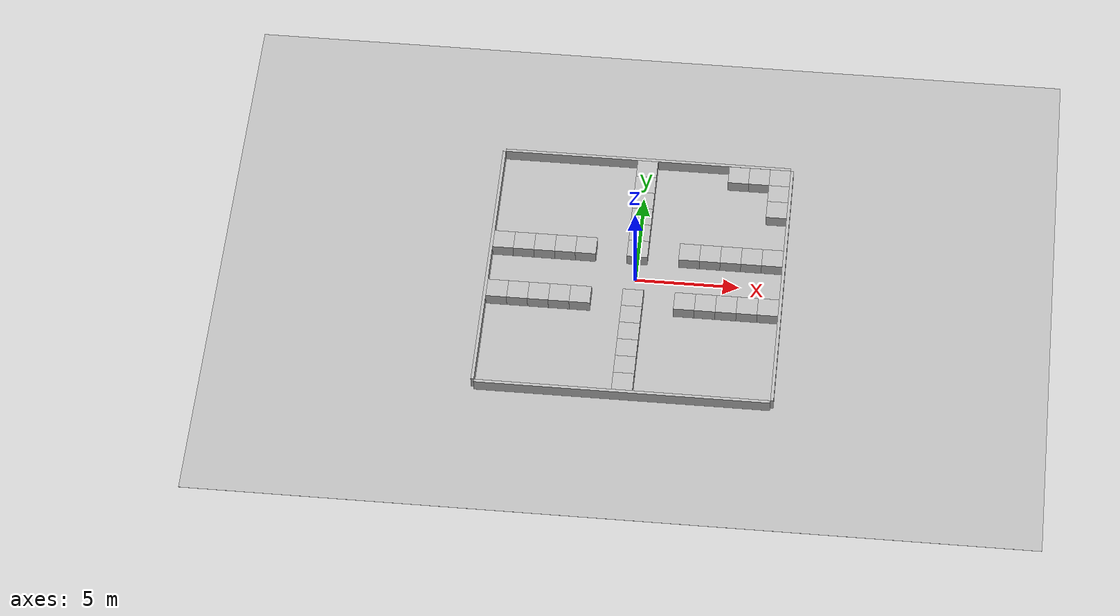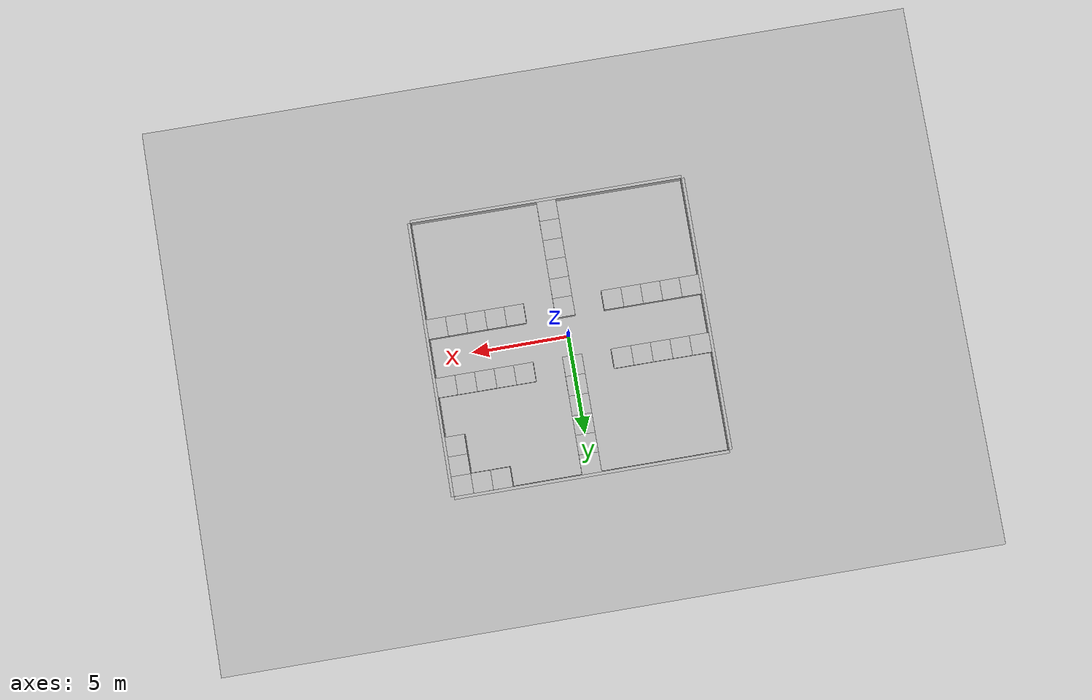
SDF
<sdf version="1.7">
 <world name="default">
  <scene>
   <shadows>0</shadows>
   <ambient>0.8 0.8 0.8 1</ambient>
   <background>1 1 1 1</background>
   <grid>1</grid>
   <origin_visual>1</origin_visual>
  </scene>
  <physics name="default_physics" default="0" type="ode">
   <max_step_size>0.001</max_step_size>
   <real_time_factor>1</real_time_factor>
   <real_time_update_rate>500</real_time_update_rate>
  </physics>
  <model name="ground_plane">
   <static>1</static>
   <link name="link">
    <collision name="collision">
     <geometry><plane><normal>0 0 1</normal><size>50 50</size></plane></geometry>
     <surface><friction><ode><mu>100</mu><mu2>50</mu2></ode></friction></surface>
    </collision>
    <visual name="visual">
     <cast_shadows>0</cast_shadows>
     <geometry><plane><normal>0 0 1</normal><size>100 100</size></plane></geometry>
     <material>
      <script><name>Gazebo/Grey</name><uri>model://media/materials/scripts/gazebo.material</uri></script>
     </material>
    </visual>
    <velocity_decay><linear>0</linear><angular>0</angular></velocity_decay>
   </link>
  </model>
  <gravity>0 0 -9.8</gravity>
  <magnetic_field>6e-06 2.3e-05 -4.2e-05</magnetic_field>
  <atmosphere type="adiabatic"/>
  <audio><device>default</device></audio>
  <spherical_coordinates>
   <surface_model>EARTH_WGS84</surface_model>
   <latitude_deg>0</latitude_deg>
   <longitude_deg>0</longitude_deg>
   <elevation>0</elevation>
   <heading_deg>0</heading_deg>
  </spherical_coordinates>
  <model name="unit_box">
   <pose>6.5 6.5 0.5 0 -0 0</pose>
   <static>1</static>
   <link name="link">
    <inertial>
     <mass>1</mass>
     <inertia>
      <ixx>0.166667</ixx>
      <ixy>0</ixy>
      <ixz>0</ixz>
      <iyy>0.166667</iyy>
      <iyz>0</iyz>
      <izz>0.166667</izz>
     </inertia>
    </inertial>
    <collision name="collision"><geometry><box><size>0.999998 1 1</size></box></geometry></collision>
    <visual name="visual">
     <geometry><mesh><uri>model://concrete_cube_1m/meshes/concrete_cube_1m.dae</uri></mesh></geometry>
    </visual>
   </link>
  </model>
  <model name="outer_barrier_1">
   <pose>-7.075 0 0.5 0 -0 0</pose>
   <static>1</static>
   <link name="link">
    <inertial>
     <mass>1</mass>
     <inertia>
      <ixx>0.166667</ixx>
      <ixy>0</ixy>
      <ixz>0</ixz>
      <iyy>0.166667</iyy>
      <iyz>0</iyz>
      <izz>0.166667</izz>
     </inertia>
    </inertial>
    <collision name="collision"><geometry><box><size>0.2 14 1</size></box></geometry></collision>
    <visual name="visual">
     <geometry><mesh><uri>model://concrete_barrier_14m/meshes/concrete_barrier_14m.dae</uri></mesh></geometry>
    </visual>
   </link>
  </model>
  <model name="outer_barrier_2">
   <pose>7.075 0 0.5 0 -0 0</pose>
   <static>1</static>
   <link name="link">
    <inertial>
     <mass>1</mass>
     <inertia>
      <ixx>0.166667</ixx>
      <ixy>0</ixy>
      <ixz>0</ixz>
      <iyy>0.166667</iyy>
      <iyz>0</iyz>
      <izz>0.166667</izz>
     </inertia>
    </inertial>
    <collision name="collision"><geometry><box><size>0.2 14 1</size></box></geometry></collision>
    <visual name="visual">
     <geometry><mesh><uri>model://concrete_barrier_14m/meshes/concrete_barrier_14m.dae</uri></mesh></geometry>
    </visual>
   </link>
  </model>
  <model name="outer_barrier_3">
   <pose>0 7.075 0.5 0 -0 1.5708</pose>
   <static>1</static>
   <link name="link">
    <inertial>
     <mass>1</mass>
     <inertia>
      <ixx>0.166667</ixx>
      <ixy>0</ixy>
      <ixz>0</ixz>
      <iyy>0.166667</iyy>
      <iyz>0</iyz>
      <izz>0.166667</izz>
     </inertia>
    </inertial>
    <collision name="collision"><geometry><box><size>0.2 14 1</size></box></geometry></collision>
    <visual name="visual">
     <geometry><mesh><uri>model://concrete_barrier_14m/meshes/concrete_barrier_14m.dae</uri></mesh></geometry>
    </visual>
   </link>
  </model>
  <model name="outer_barrier_4">
   <pose>0 -7.075 0.5 0 -0 1.5708</pose>
   <static>1</static>
   <link name="link">
    <inertial>
     <mass>1</mass>
     <inertia>
      <ixx>0.166667</ixx>
      <ixy>0</ixy>
      <ixz>0</ixz>
      <iyy>0.166667</iyy>
      <iyz>0</iyz>
      <izz>0.166667</izz>
     </inertia>
    </inertial>
    <collision name="collision"><geometry><box><size>0.2 14 1</size></box></geometry></collision>
    <visual name="visual">
     <geometry><mesh><uri>model://concrete_barrier_14m/meshes/concrete_barrier_14m.dae</uri></mesh></geometry>
    </visual>
   </link>
  </model>
  <model name="box_01">
   <pose>6.5 5.5 0.5 0 -0 0</pose>
   <static>1</static>
   <link name="link">
    <inertial>
     <mass>1</mass>
     <inertia>
      <ixx>0.166667</ixx>
      <ixy>0</ixy>
      <ixz>0</ixz>
      <iyy>0.166667</iyy>
      <iyz>0</iyz>
      <izz>0.166667</izz>
     </inertia>
    </inertial>
    <collision name="collision"><geometry><box><size>0.999998 1 1</size></box></geometry></collision>
    <visual name="visual">
     <geometry><mesh><uri>model://concrete_cube_1m/meshes/concrete_cube_1m.dae</uri></mesh></geometry>
    </visual>
   </link>
  </model>
  <model name="box_02">
   <pose>4.5 1.5 0.5 0 -0 0</pose>
   <static>1</static>
   <link name="link">
    <inertial>
     <mass>1</mass>
     <inertia>
      <ixx>0.166667</ixx>
      <ixy>0</ixy>
      <ixz>0</ixz>
      <iyy>0.166667</iyy>
      <iyz>0</iyz>
      <izz>0.166667</izz>
     </inertia>
    </inertial>
    <collision name="collision"><geometry><box><size>0.999998 1 1</size></box></geometry></collision>
    <visual name="visual">
     <geometry><mesh><uri>model://concrete_cube_1m/meshes/concrete_cube_1m.dae</uri></mesh></geometry>
    </visual>
   </link>
  </model>
  <model name="box_04">
   <pose>0 -1.5 0.5 0 -0 0</pose>
   <static>1</static>
   <link name="link">
    <inertial>
     <mass>1</mass>
     <inertia>
      <ixx>0.166667</ixx>
      <ixy>0</ixy>
      <ixz>0</ixz>
      <iyy>0.166667</iyy>
      <iyz>0</iyz>
      <izz>0.166667</izz>
     </inertia>
    </inertial>
    <collision name="collision"><geometry><box><size>0.999998 1 1</size></box></geometry></collision>
    <visual name="visual">
     <geometry><mesh><uri>model://concrete_cube_1m/meshes/concrete_cube_1m.dae</uri></mesh></geometry>
    </visual>
   </link>
  </model>
  <model name="box_05">
   <pose>0 -2.5 0.5 0 -0 0</pose>
   <static>1</static>
   <link name="link">
    <inertial>
     <mass>1</mass>
     <inertia>
      <ixx>0.166667</ixx>
      <ixy>0</ixy>
      <ixz>0</ixz>
      <iyy>0.166667</iyy>
      <iyz>0</iyz>
      <izz>0.166667</izz>
     </inertia>
    </inertial>
    <collision name="collision"><geometry><box><size>0.999998 1 1</size></box></geometry></collision>
    <visual name="visual">
     <geometry><mesh><uri>model://concrete_cube_1m/meshes/concrete_cube_1m.dae</uri></mesh></geometry>
    </visual>
   </link>
  </model>
  <model name="box_06">
   <pose>0 -5.5 0.5 0 -0 0</pose>
   <static>1</static>
   <link name="link">
    <inertial>
     <mass>1</mass>
     <inertia>
      <ixx>0.166667</ixx>
      <ixy>0</ixy>
      <ixz>0</ixz>
      <iyy>0.166667</iyy>
      <iyz>0</iyz>
      <izz>0.166667</izz>
     </inertia>
    </inertial>
    <collision name="collision"><geometry><box><size>0.999998 1 1</size></box></geometry></collision>
    <visual name="visual">
     <geometry><mesh><uri>model://concrete_cube_1m/meshes/concrete_cube_1m.dae</uri></mesh></geometry>
    </visual>
   </link>
  </model>
  <model name="box_07">
   <pose>0 -3.5 0.5 0 -0 0</pose>
   <static>1</static>
   <link name="link">
    <inertial>
     <mass>1</mass>
     <inertia>
      <ixx>0.166667</ixx>
      <ixy>0</ixy>
      <ixz>0</ixz>
      <iyy>0.166667</iyy>
      <iyz>0</iyz>
      <izz>0.166667</izz>
     </inertia>
    </inertial>
    <collision name="collision"><geometry><box><size>0.999998 1 1</size></box></geometry></collision>
    <visual name="visual">
     <geometry><mesh><uri>model://concrete_cube_1m/meshes/concrete_cube_1m.dae</uri></mesh></geometry>
    </visual>
   </link>
  </model>
  <model name="box_09">
   <pose>0 -6.5 0.5 0 -0 0</pose>
   <static>1</static>
   <link name="link">
    <inertial>
     <mass>1</mass>
     <inertia>
      <ixx>0.166667</ixx>
      <ixy>0</ixy>
      <ixz>0</ixz>
      <iyy>0.166667</iyy>
      <iyz>0</iyz>
      <izz>0.166667</izz>
     </inertia>
    </inertial>
    <collision name="collision"><geometry><box><size>0.999998 1 1</size></box></geometry></collision>
    <visual name="visual">
     <geometry><mesh><uri>model://concrete_cube_1m/meshes/concrete_cube_1m.dae</uri></mesh></geometry>
    </visual>
   </link>
  </model>
  <model name="box_10">
   <pose>6.5 1.5 0.5 0 -0 0</pose>
   <static>1</static>
   <link name="link">
    <inertial>
     <mass>1</mass>
     <inertia>
      <ixx>0.166667</ixx>
      <ixy>0</ixy>
      <ixz>0</ixz>
      <iyy>0.166667</iyy>
      <iyz>0</iyz>
      <izz>0.166667</izz>
     </inertia>
    </inertial>
    <collision name="collision"><geometry><box><size>0.999998 1 1</size></box></geometry></collision>
    <visual name="visual">
     <geometry><mesh><uri>model://concrete_cube_1m/meshes/concrete_cube_1m.dae</uri></mesh></geometry>
    </visual>
   </link>
  </model>
  <model name="box_11">
   <pose>0 2.5 0.5 0 -0 0</pose>
   <static>1</static>
   <link name="link">
    <inertial>
     <mass>1</mass>
     <inertia>
      <ixx>0.166667</ixx>
      <ixy>0</ixy>
      <ixz>0</ixz>
      <iyy>0.166667</iyy>
      <iyz>0</iyz>
      <izz>0.166667</izz>
     </inertia>
    </inertial>
    <collision name="collision"><geometry><box><size>0.999998 1 1</size></box></geometry></collision>
    <visual name="visual">
     <geometry><mesh><uri>model://concrete_cube_1m/meshes/concrete_cube_1m.dae</uri></mesh></geometry>
    </visual>
   </link>
  </model>
  <model name="box_12">
   <pose>0 1.5 0.5 0 -0 0</pose>
   <static>1</static>
   <link name="link">
    <inertial>
     <mass>1</mass>
     <inertia>
      <ixx>0.166667</ixx>
      <ixy>0</ixy>
      <ixz>0</ixz>
      <iyy>0.166667</iyy>
      <iyz>0</iyz>
      <izz>0.166667</izz>
     </inertia>
    </inertial>
    <collision name="collision"><geometry><box><size>0.999998 1 1</size></box></geometry></collision>
    <visual name="visual">
     <geometry><mesh><uri>model://concrete_cube_1m/meshes/concrete_cube_1m.dae</uri></mesh></geometry>
    </visual>
   </link>
  </model>
  <model name="box_13">
   <pose>3.5 1.5 0.5 0 -0 0</pose>
   <static>1</static>
   <link name="link">
    <inertial>
     <mass>1</mass>
     <inertia>
      <ixx>0.166667</ixx>
      <ixy>0</ixy>
      <ixz>0</ixz>
      <iyy>0.166667</iyy>
      <iyz>0</iyz>
      <izz>0.166667</izz>
     </inertia>
    </inertial>
    <collision name="collision"><geometry><box><size>0.999998 1 1</size></box></geometry></collision>
    <visual name="visual">
     <geometry><mesh><uri>model://concrete_cube_1m/meshes/concrete_cube_1m.dae</uri></mesh></geometry>
    </visual>
   </link>
  </model>
  <model name="box_15">
   <pose>4.5 -1.5 0.5 0 -0 0</pose>
   <static>1</static>
   <link name="link">
    <inertial>
     <mass>1</mass>
     <inertia>
      <ixx>0.166667</ixx>
      <ixy>0</ixy>
      <ixz>0</ixz>
      <iyy>0.166667</iyy>
      <iyz>0</iyz>
      <izz>0.166667</izz>
     </inertia>
    </inertial>
    <collision name="collision"><geometry><box><size>0.999998 1 1</size></box></geometry></collision>
    <visual name="visual">
     <geometry><mesh><uri>model://concrete_cube_1m/meshes/concrete_cube_1m.dae</uri></mesh></geometry>
    </visual>
   </link>
  </model>
  <model name="box_17">
   <pose>2.5 1.5 0.5 0 -0 0</pose>
   <static>1</static>
   <link name="link">
    <inertial>
     <mass>1</mass>
     <inertia>
      <ixx>0.166667</ixx>
      <ixy>0</ixy>
      <ixz>0</ixz>
      <iyy>0.166667</iyy>
      <iyz>0</iyz>
      <izz>0.166667</izz>
     </inertia>
    </inertial>
    <collision name="collision"><geometry><box><size>0.999998 1 1</size></box></geometry></collision>
    <visual name="visual">
     <geometry><mesh><uri>model://concrete_cube_1m/meshes/concrete_cube_1m.dae</uri></mesh></geometry>
    </visual>
   </link>
  </model>
  <model name="box_18">
   <pose>-4.5 1.5 0.5 0 -0 0</pose>
   <static>1</static>
   <link name="link">
    <inertial>
     <mass>1</mass>
     <inertia>
      <ixx>0.166667</ixx>
      <ixy>0</ixy>
      <ixz>0</ixz>
      <iyy>0.166667</iyy>
      <iyz>0</iyz>
      <izz>0.166667</izz>
     </inertia>
    </inertial>
    <collision name="collision"><geometry><box><size>0.999998 1 1</size></box></geometry></collision>
    <visual name="visual">
     <geometry><mesh><uri>model://concrete_cube_1m/meshes/concrete_cube_1m.dae</uri></mesh></geometry>
    </visual>
   </link>
  </model>
  <model name="box_20">
   <pose>5.5 -1.5 0.5 0 -0 0</pose>
   <static>1</static>
   <link name="link">
    <inertial>
     <mass>1</mass>
     <inertia>
      <ixx>0.166667</ixx>
      <ixy>0</ixy>
      <ixz>0</ixz>
      <iyy>0.166667</iyy>
      <iyz>0</iyz>
      <izz>0.166667</izz>
     </inertia>
    </inertial>
    <collision name="collision"><geometry><box><size>0.999998 1 1</size></box></geometry></collision>
    <visual name="visual">
     <geometry><mesh><uri>model://concrete_cube_1m/meshes/concrete_cube_1m.dae</uri></mesh></geometry>
    </visual>
   </link>
  </model>
  <model name="box_23">
   <pose>0 5.5 0.5 0 -0 0</pose>
   <static>1</static>
   <link name="link">
    <inertial>
     <mass>1</mass>
     <inertia>
      <ixx>0.166667</ixx>
      <ixy>0</ixy>
      <ixz>0</ixz>
      <iyy>0.166667</iyy>
      <iyz>0</iyz>
      <izz>0.166667</izz>
     </inertia>
    </inertial>
    <collision name="collision"><geometry><box><size>0.999998 1 1</size></box></geometry></collision>
    <visual name="visual">
     <geometry><mesh><uri>model://concrete_cube_1m/meshes/concrete_cube_1m.dae</uri></mesh></geometry>
    </visual>
   </link>
  </model>
  <model name="box_24">
   <pose>0 6.5 0.5 0 -0 0</pose>
   <static>1</static>
   <link name="link">
    <inertial>
     <mass>1</mass>
     <inertia>
      <ixx>0.166667</ixx>
      <ixy>0</ixy>
      <ixz>0</ixz>
      <iyy>0.166667</iyy>
      <iyz>0</iyz>
      <izz>0.166667</izz>
     </inertia>
    </inertial>
    <collision name="collision"><geometry><box><size>0.999998 1 1</size></box></geometry></collision>
    <visual name="visual">
     <geometry><mesh><uri>model://concrete_cube_1m/meshes/concrete_cube_1m.dae</uri></mesh></geometry>
    </visual>
   </link>
  </model>
  <model name="box_25">
   <pose>0 4.5 0.5 0 -0 0</pose>
   <static>1</static>
   <link name="link">
    <inertial>
     <mass>1</mass>
     <inertia>
      <ixx>0.166667</ixx>
      <ixy>0</ixy>
      <ixz>0</ixz>
      <iyy>0.166667</iyy>
      <iyz>0</iyz>
      <izz>0.166667</izz>
     </inertia>
    </inertial>
    <collision name="collision"><geometry><box><size>0.999998 1 1</size></box></geometry></collision>
    <visual name="visual">
     <geometry><mesh><uri>model://concrete_cube_1m/meshes/concrete_cube_1m.dae</uri></mesh></geometry>
    </visual>
   </link>
  </model>
  <model name="box_26">
   <pose>0 3.5 0.5 0 -0 0</pose>
   <static>1</static>
   <link name="link">
    <inertial>
     <mass>1</mass>
     <inertia>
      <ixx>0.166667</ixx>
      <ixy>0</ixy>
      <ixz>0</ixz>
      <iyy>0.166667</iyy>
      <iyz>0</iyz>
      <izz>0.166667</izz>
     </inertia>
    </inertial>
    <collision name="collision"><geometry><box><size>0.999998 1 1</size></box></geometry></collision>
    <visual name="visual">
     <geometry><mesh><uri>model://concrete_cube_1m/meshes/concrete_cube_1m.dae</uri></mesh></geometry>
    </visual>
   </link>
  </model>
  <model name="box_27">
   <pose>6.5 4.5 0.5 0 -0 0</pose>
   <static>1</static>
   <link name="link">
    <inertial>
     <mass>1</mass>
     <inertia>
      <ixx>0.166667</ixx>
      <ixy>0</ixy>
      <ixz>0</ixz>
      <iyy>0.166667</iyy>
      <iyz>0</iyz>
      <izz>0.166667</izz>
     </inertia>
    </inertial>
    <collision name="collision"><geometry><box><size>0.999998 1 1</size></box></geometry></collision>
    <visual name="visual">
     <geometry><mesh><uri>model://concrete_cube_1m/meshes/concrete_cube_1m.dae</uri></mesh></geometry>
    </visual>
   </link>
  </model>
  <model name="box_29">
   <pose>0 -4.5 0.5 0 -0 0</pose>
   <static>1</static>
   <link name="link">
    <inertial>
     <mass>1</mass>
     <inertia>
      <ixx>0.166667</ixx>
      <ixy>0</ixy>
      <ixz>0</ixz>
      <iyy>0.166667</iyy>
      <iyz>0</iyz>
      <izz>0.166667</izz>
     </inertia>
    </inertial>
    <collision name="collision"><geometry><box><size>0.999998 1 1</size></box></geometry></collision>
    <visual name="visual">
     <geometry><mesh><uri>model://concrete_cube_1m/meshes/concrete_cube_1m.dae</uri></mesh></geometry>
    </visual>
   </link>
  </model>
  <model name="box_30">
   <pose>-2.5 -1.5 0.5 0 -0 0</pose>
   <static>1</static>
   <link name="link">
    <inertial>
     <mass>1</mass>
     <inertia>
      <ixx>0.166667</ixx>
      <ixy>0</ixy>
      <ixz>0</ixz>
      <iyy>0.166667</iyy>
      <iyz>0</iyz>
      <izz>0.166667</izz>
     </inertia>
    </inertial>
    <collision name="collision"><geometry><box><size>0.999998 1 1</size></box></geometry></collision>
    <visual name="visual">
     <geometry><mesh><uri>model://concrete_cube_1m/meshes/concrete_cube_1m.dae</uri></mesh></geometry>
    </visual>
   </link>
  </model>
  <model name="box_31">
   <pose>-4.5 -1.5 0.5 0 -0 0</pose>
   <static>1</static>
   <link name="link">
    <inertial>
     <mass>1</mass>
     <inertia>
      <ixx>0.166667</ixx>
      <ixy>0</ixy>
      <ixz>0</ixz>
      <iyy>0.166667</iyy>
      <iyz>0</iyz>
      <izz>0.166667</izz>
     </inertia>
    </inertial>
    <collision name="collision"><geometry><box><size>0.999998 1 1</size></box></geometry></collision>
    <visual name="visual">
     <geometry><mesh><uri>model://concrete_cube_1m/meshes/concrete_cube_1m.dae</uri></mesh></geometry>
    </visual>
   </link>
  </model>
  <model name="box_32">
   <pose>-3.5 -1.5 0.5 0 -0 0</pose>
   <static>1</static>
   <link name="link">
    <inertial>
     <mass>1</mass>
     <inertia>
      <ixx>0.166667</ixx>
      <ixy>0</ixy>
      <ixz>0</ixz>
      <iyy>0.166667</iyy>
      <iyz>0</iyz>
      <izz>0.166667</izz>
     </inertia>
    </inertial>
    <collision name="collision"><geometry><box><size>0.999998 1 1</size></box></geometry></collision>
    <visual name="visual">
     <geometry><mesh><uri>model://concrete_cube_1m/meshes/concrete_cube_1m.dae</uri></mesh></geometry>
    </visual>
   </link>
  </model>
  <model name="box_33">
   <pose>-5.5 -1.5 0.5 0 -0 0</pose>
   <static>1</static>
   <link name="link">
    <inertial>
     <mass>1</mass>
     <inertia>
      <ixx>0.166667</ixx>
      <ixy>0</ixy>
      <ixz>0</ixz>
      <iyy>0.166667</iyy>
      <iyz>0</iyz>
      <izz>0.166667</izz>
     </inertia>
    </inertial>
    <collision name="collision"><geometry><box><size>0.999998 1 1</size></box></geometry></collision>
    <visual name="visual">
     <geometry><mesh><uri>model://concrete_cube_1m/meshes/concrete_cube_1m.dae</uri></mesh></geometry>
    </visual>
   </link>
  </model>
  <model name="box_34">
   <pose>-6.5 -1.5 0.5 0 -0 0</pose>
   <static>1</static>
   <link name="link">
    <inertial>
     <mass>1</mass>
     <inertia>
      <ixx>0.166667</ixx>
      <ixy>0</ixy>
      <ixz>0</ixz>
      <iyy>0.166667</iyy>
      <iyz>0</iyz>
      <izz>0.166667</izz>
     </inertia>
    </inertial>
    <collision name="collision"><geometry><box><size>0.999998 1 1</size></box></geometry></collision>
    <visual name="visual">
     <geometry><mesh><uri>model://concrete_cube_1m/meshes/concrete_cube_1m.dae</uri></mesh></geometry>
    </visual>
   </link>
  </model>
  <model name="box_35">
   <pose>-6.5 1.5 0.5 0 -0 0</pose>
   <static>1</static>
   <link name="link">
    <inertial>
     <mass>1</mass>
     <inertia>
      <ixx>0.166667</ixx>
      <ixy>0</ixy>
      <ixz>0</ixz>
      <iyy>0.166667</iyy>
      <iyz>0</iyz>
      <izz>0.166667</izz>
     </inertia>
    </inertial>
    <collision name="collision"><geometry><box><size>0.999998 1 1</size></box></geometry></collision>
    <visual name="visual">
     <geometry><mesh><uri>model://concrete_cube_1m/meshes/concrete_cube_1m.dae</uri></mesh></geometry>
    </visual>
   </link>
  </model>
  <model name="box_36">
   <pose>-3.5 1.5 0.5 0 -0 0</pose>
   <static>1</static>
   <link name="link">
    <inertial>
     <mass>1</mass>
     <inertia>
      <ixx>0.166667</ixx>
      <ixy>0</ixy>
      <ixz>0</ixz>
      <iyy>0.166667</iyy>
      <iyz>0</iyz>
      <izz>0.166667</izz>
     </inertia>
    </inertial>
    <collision name="collision"><geometry><box><size>0.999998 1 1</size></box></geometry></collision>
    <visual name="visual">
     <geometry><mesh><uri>model://concrete_cube_1m/meshes/concrete_cube_1m.dae</uri></mesh></geometry>
    </visual>
   </link>
  </model>
  <model name="box_37">
   <pose>-2.5 1.5 0.5 0 -0 0</pose>
   <static>1</static>
   <link name="link">
    <inertial>
     <mass>1</mass>
     <inertia>
      <ixx>0.166667</ixx>
      <ixy>0</ixy>
      <ixz>0</ixz>
      <iyy>0.166667</iyy>
      <iyz>0</iyz>
      <izz>0.166667</izz>
     </inertia>
    </inertial>
    <collision name="collision"><geometry><box><size>0.999998 1 1</size></box></geometry></collision>
    <visual name="visual">
     <geometry><mesh><uri>model://concrete_cube_1m/meshes/concrete_cube_1m.dae</uri></mesh></geometry>
    </visual>
   </link>
  </model>
  <model name="box_38">
   <pose>-5.5 1.5 0.5 0 -0 0</pose>
   <static>1</static>
   <link name="link">
    <inertial>
     <mass>1</mass>
     <inertia>
      <ixx>0.166667</ixx>
      <ixy>0</ixy>
      <ixz>0</ixz>
      <iyy>0.166667</iyy>
      <iyz>0</iyz>
      <izz>0.166667</izz>
     </inertia>
    </inertial>
    <collision name="collision"><geometry><box><size>0.999998 1 1</size></box></geometry></collision>
    <visual name="visual">
     <geometry><mesh><uri>model://concrete_cube_1m/meshes/concrete_cube_1m.dae</uri></mesh></geometry>
    </visual>
   </link>
  </model>
  <model name="box_39">
   <pose>3.5 -1.5 0.5 0 -0 0</pose>
   <static>1</static>
   <link name="link">
    <inertial>
     <mass>1</mass>
     <inertia>
      <ixx>0.166667</ixx>
      <ixy>0</ixy>
      <ixz>0</ixz>
      <iyy>0.166667</iyy>
      <iyz>0</iyz>
      <izz>0.166667</izz>
     </inertia>
    </inertial>
    <collision name="collision"><geometry><box><size>0.999998 1 1</size></box></geometry></collision>
    <visual name="visual">
     <geometry><mesh><uri>model://concrete_cube_1m/meshes/concrete_cube_1m.dae</uri></mesh></geometry>
    </visual>
   </link>
  </model>
  <model name="box_40">
   <pose>6.5 -1.5 0.5 0 -0 0</pose>
   <static>1</static>
   <link name="link">
    <inertial>
     <mass>1</mass>
     <inertia>
      <ixx>0.166667</ixx>
      <ixy>0</ixy>
      <ixz>0</ixz>
      <iyy>0.166667</iyy>
      <iyz>0</iyz>
      <izz>0.166667</izz>
     </inertia>
    </inertial>
    <collision name="collision"><geometry><box><size>0.999998 1 1</size></box></geometry></collision>
    <visual name="visual">
     <geometry><mesh><uri>model://concrete_cube_1m/meshes/concrete_cube_1m.dae</uri></mesh></geometry>
    </visual>
   </link>
  </model>
  <model name="box_41">
   <pose>2.5 -1.5 0.5 0 -0 0</pose>
   <static>1</static>
   <link name="link">
    <inertial>
     <mass>1</mass>
     <inertia>
      <ixx>0.166667</ixx>
      <ixy>0</ixy>
      <ixz>0</ixz>
      <iyy>0.166667</iyy>
      <iyz>0</iyz>
      <izz>0.166667</izz>
     </inertia>
    </inertial>
    <collision name="collision"><geometry><box><size>0.999998 1 1</size></box></geometry></collision>
    <visual name="visual">
     <geometry><mesh><uri>model://concrete_cube_1m/meshes/concrete_cube_1m.dae</uri></mesh></geometry>
    </visual>
   </link>
  </model>
  <model name="box_42">
   <pose>5.5 1.5 0.5 0 -0 0</pose>
   <static>1</static>
   <link name="link">
    <inertial>
     <mass>1</mass>
     <inertia>
      <ixx>0.166667</ixx>
      <ixy>0</ixy>
      <ixz>0</ixz>
      <iyy>0.166667</iyy>
      <iyz>0</iyz>
      <izz>0.166667</izz>
     </inertia>
    </inertial>
    <collision name="collision"><geometry><box><size>0.999998 1 1</size></box></geometry></collision>
    <visual name="visual">
     <geometry><mesh><uri>model://concrete_cube_1m/meshes/concrete_cube_1m.dae</uri></mesh></geometry>
    </visual>
   </link>
  </model>
  <model name="floor_tiles">
   <static>1</static>
   <link name="link">
    <visual name="visual_floor_tiles_0">
     <geometry><box><size>40 28 0.005</size></box></geometry>
     <material>
      <script>
       <uri>model://floor_tiles/materials/scripts</uri>
       <uri>model://floor_tiles/materials/textures</uri>
       <name>floor_tiles</name>
      </script>
     </material>
    </visual>
   </link>
  </model>
  <model name="box_17_clone">
   <pose>5.5 6.5 0.5 0 -0 0</pose>
   <static>1</static>
   <link name="link">
    <inertial>
     <mass>1</mass>
     <inertia>
      <ixx>0.166667</ixx>
      <ixy>0</ixy>
      <ixz>0</ixz>
      <iyy>0.166667</iyy>
      <iyz>0</iyz>
      <izz>0.166667</izz>
     </inertia>
    </inertial>
    <collision name="collision"><geometry><box><size>0.999998 1 1</size></box></geometry></collision>
    <visual name="visual">
     <geometry><mesh><uri>model://concrete_cube_1m/meshes/concrete_cube_1m.dae</uri></mesh></geometry>
    </visual>
   </link>
  </model>
  <model name="box_17_clone_0">
   <pose>4.5 6.5 0.5 0 -0 0</pose>
   <static>1</static>
   <link name="link">
    <inertial>
     <mass>1</mass>
     <inertia>
      <ixx>0.166667</ixx>
      <ixy>0</ixy>
      <ixz>0</ixz>
      <iyy>0.166667</iyy>
      <iyz>0</iyz>
      <izz>0.166667</izz>
     </inertia>
    </inertial>
    <collision name="collision"><geometry><box><size>0.999998 1 1</size></box></geometry></collision>
    <visual name="visual">
     <geometry><mesh><uri>model://concrete_cube_1m/meshes/concrete_cube_1m.dae</uri></mesh></geometry>
    </visual>
   </link>
  </model>
 </world>
</sdf>
